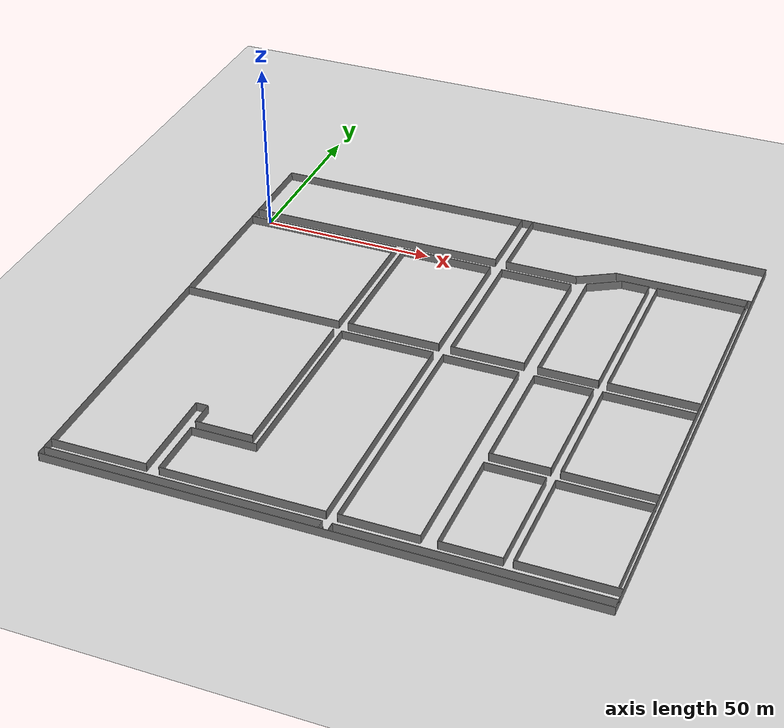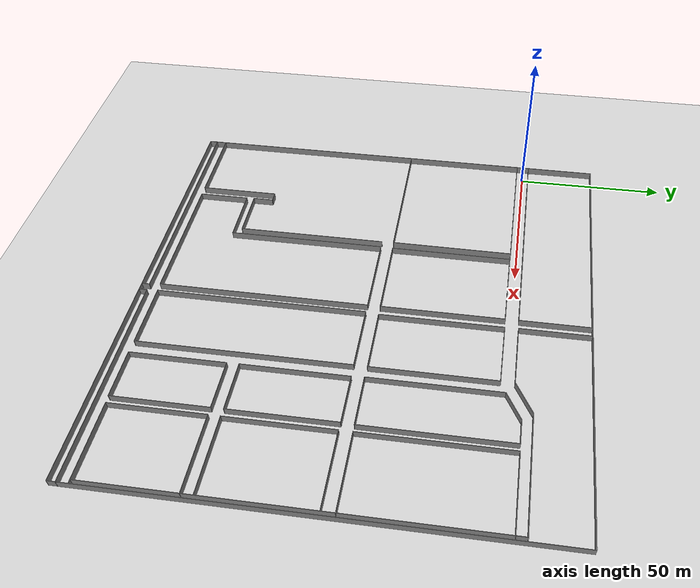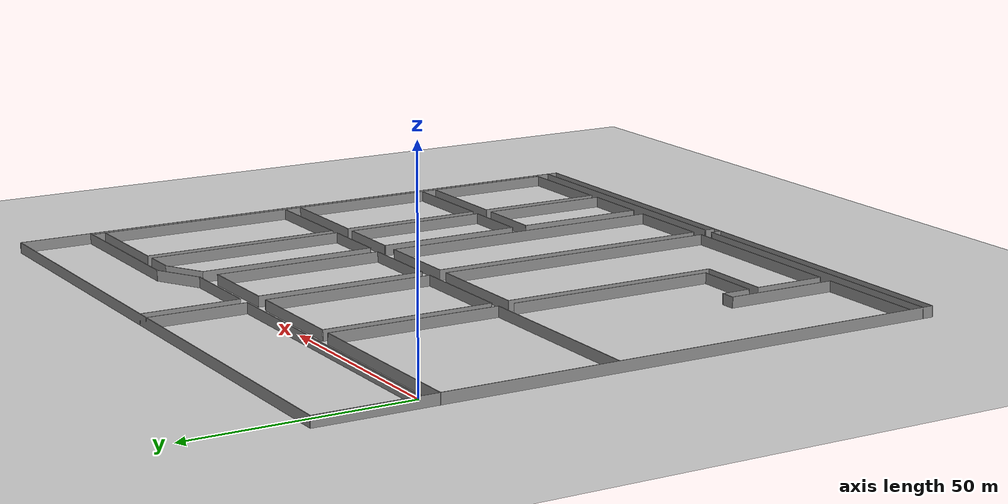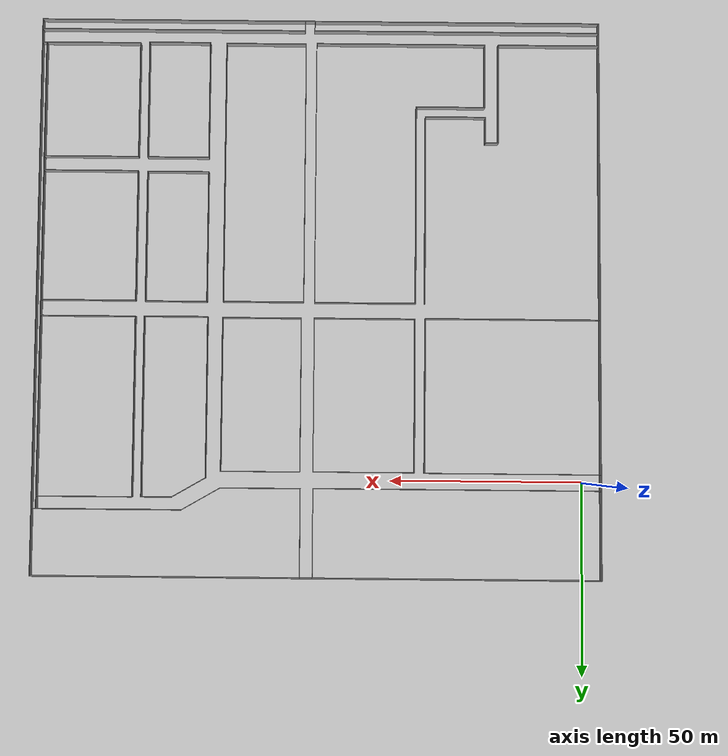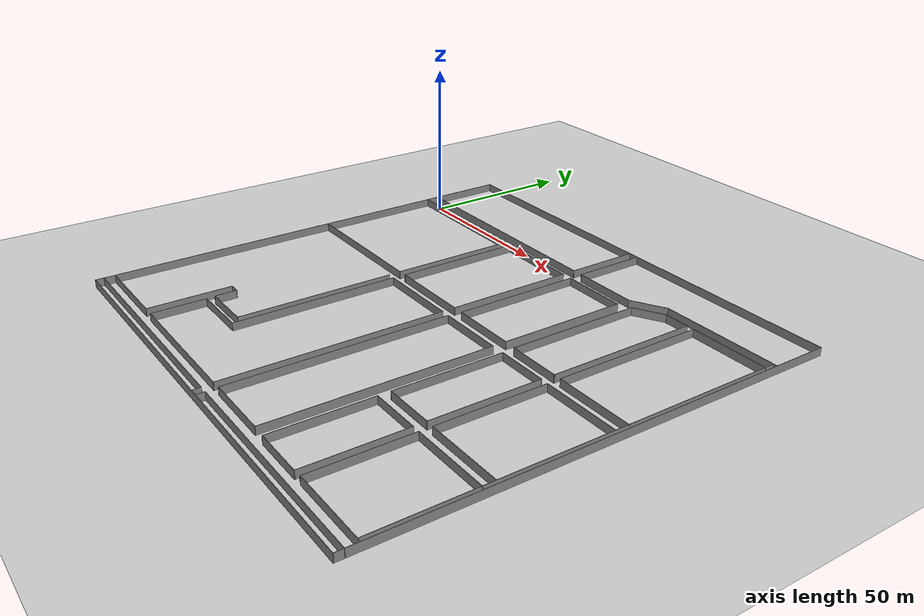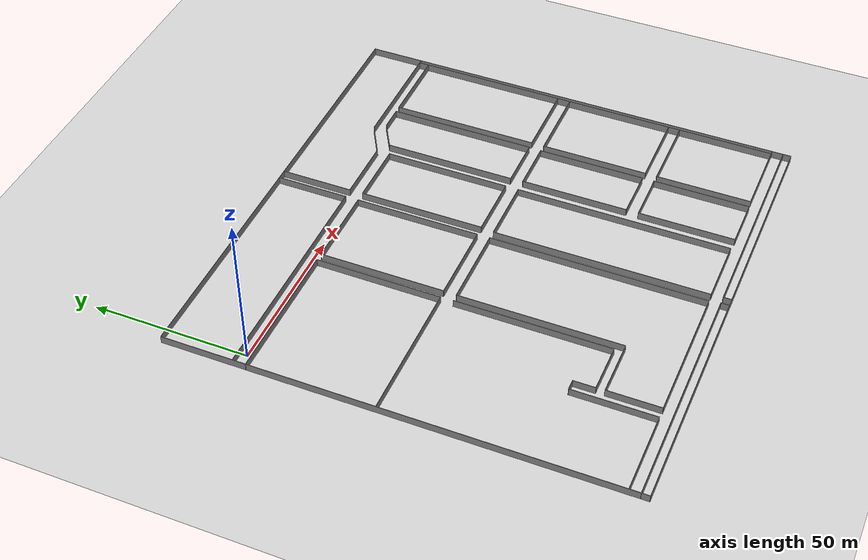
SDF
<sdf version="1.7">
 <world name="default">
  <light name="sun" type="directional">
   <pose>0 0 10 0 -0 0</pose>
   <diffuse>0.8 0.8 0.8 1</diffuse>
   <specular>0.2 0.2 0.2 1</specular>
   <attenuation>
    <range>1000</range>
    <constant>0.9</constant>
    <linear>0.01</linear>
    <quadratic>0.001</quadratic>
   </attenuation>
   <direction>-0.5 0.1 -0.9</direction>
   <spot><inner_angle>0</inner_angle><outer_angle>0</outer_angle><falloff>0</falloff></spot>
  </light>
  <model name="ground_plane">
   <static>1</static>
   <link name="link">
    <collision name="collision">
     <geometry><plane><normal>0 0 1</normal><size>100 100</size></plane></geometry>
     <surface><friction><ode><mu>100</mu><mu2>50</mu2></ode></friction></surface>
    </collision>
    <visual name="visual">
     <cast_shadows>0</cast_shadows>
     <geometry><plane><normal>0 0 1</normal><size>100 100</size></plane></geometry>
     <material>
      <script><uri>file://media/materials/scripts/gazebo.material</uri><name>Gazebo/Grey</name></script>
     </material>
    </visual>
   </link>
  </model>
  <gravity>0 0 -9.8</gravity>
  <magnetic_field>6e-06 2.3e-05 -4.2e-05</magnetic_field>
  <atmosphere type="adiabatic"/>
  <physics type="ode">
   <max_step_size>0.001</max_step_size>
   <real_time_factor>1</real_time_factor>
   <real_time_update_rate>1000</real_time_update_rate>
  </physics>
  <scene><ambient>0.4 0.4 0.4 1</ambient><background>0.7 0.7 0.7 1</background><shadows>1</shadows></scene>
  <audio><device>default</device></audio>
  <spherical_coordinates>
   <surface_model>EARTH_WGS84</surface_model>
   <latitude_deg>0</latitude_deg>
   <longitude_deg>0</longitude_deg>
   <elevation>0</elevation>
   <heading_deg>0</heading_deg>
  </spherical_coordinates>
  <model name="factory_layout">
   <pose>69.0675 -48.1244 0 0 -0 0</pose>
   <link name="Wall_10">
    <collision name="Wall_10_Collision">
     <geometry><box><size>38.945 0.15 2.5</size></box></geometry>
     <pose>0 0 1.25 0 -0 0</pose>
    </collision>
    <visual name="Wall_10_Visual">
     <pose>0 0 1.25 0 -0 0</pose>
     <geometry><box><size>38.945 0.15 2.5</size></box></geometry>
     <material>
      <script><uri>file://media/materials/scripts/gazebo.material</uri><name>Gazebo/Grey</name></script>
      <ambient>1 1 1 1</ambient>
     </material>
     <meta><layer>0</layer></meta>
    </visual>
    <pose>54.4367 56.0755 0 0 -0 0</pose>
   </link>
   <link name="Wall_13">
    <collision name="Wall_13_Collision">
     <geometry><box><size>123.179 0.15 2.5</size></box></geometry>
     <pose>0 0 1.25 0 -0 0</pose>
    </collision>
    <visual name="Wall_13_Visual">
     <pose>0 0 1.25 0 -0 0</pose>
     <geometry><box><size>123.179 0.15 2.5</size></box></geometry>
     <material>
      <script><uri>file://media/materials/scripts/gazebo.material</uri><name>Gazebo/Grey</name></script>
      <ambient>1 1 1 1</ambient>
     </material>
     <meta><layer>0</layer></meta>
    </visual>
    <pose>72.6622 -5.485 0 0 -0 -1.5708</pose>
   </link>
   <link name="Wall_15">
    <collision name="Wall_15_Collision">
     <geometry><box><size>25 0.15 2.5</size></box></geometry>
     <pose>0 0 1.25 0 -0 0</pose>
    </collision>
    <visual name="Wall_15_Visual">
     <pose>0 0 1.25 0 -0 0</pose>
     <geometry><box><size>25 0.15 2.5</size></box></geometry>
     <material>
      <script><uri>file://media/materials/scripts/gazebo.material</uri><name>Gazebo/Grey</name></script>
      <ambient>1 1 1 1</ambient>
     </material>
     <meta><layer>0</layer></meta>
    </visual>
    <pose>60.2462 52.8425 0 0 -0 3.14159</pose>
   </link>
   <link name="Wall_17">
    <collision name="Wall_17_Collision">
     <geometry><box><size>47.2349 0.15 2.5</size></box></geometry>
     <pose>0 0 1.25 0 -0 0</pose>
    </collision>
    <visual name="Wall_17_Visual">
     <pose>0 0 1.25 0 -0 0</pose>
     <geometry><box><size>47.2349 0.15 2.5</size></box></geometry>
     <material>
      <script><uri>file://media/materials/scripts/gazebo.material</uri><name>Gazebo/Grey</name></script>
      <ambient>1 1 1 1</ambient>
     </material>
     <meta><layer>0</layer></meta>
    </visual>
    <pose>47.8212 29.3 0 0 -0 -1.5708</pose>
   </link>
   <link name="Wall_2">
    <collision name="Wall_2_Collision">
     <geometry><box><size>74.8 0.15 2.5</size></box></geometry>
     <pose>0 0 1.25 0 -0 0</pose>
    </collision>
    <visual name="Wall_2_Visual">
     <pose>0 0 1.25 0 -0 0</pose>
     <geometry><box><size>74.8 0.15 2.5</size></box></geometry>
     <material>
      <script><uri>file://media/materials/scripts/gazebo.material</uri><name>Gazebo/Grey</name></script>
      <ambient>1 1 1 1</ambient>
     </material>
     <meta><layer>0</layer></meta>
    </visual>
    <pose>-36.3818 50.2625 0 0 -0 0</pose>
   </link>
   <link name="Wall_20">
    <collision name="Wall_20_Collision">
     <geometry><box><size>25 0.15 2.5</size></box></geometry>
     <pose>0 0 1.25 0 -0 0</pose>
    </collision>
    <visual name="Wall_20_Visual">
     <pose>0 0 1.25 0 -0 0</pose>
     <geometry><box><size>25 0.15 2.5</size></box></geometry>
     <material>
      <script><uri>file://media/materials/scripts/gazebo.material</uri><name>Gazebo/Grey</name></script>
      <ambient>1 1 1 1</ambient>
     </material>
     <meta><layer>0</layer></meta>
    </visual>
    <pose>60.2462 5.7575 0 0 -0 0</pose>
   </link>
   <link name="Wall_22">
    <collision name="Wall_22_Collision">
     <geometry><box><size>25 0.15 2.5</size></box></geometry>
     <pose>0 0 1.25 0 -0 0</pose>
    </collision>
    <visual name="Wall_22_Visual">
     <pose>0 0 1.25 0 -0 0</pose>
     <geometry><box><size>25 0.15 2.5</size></box></geometry>
     <material>
      <script><uri>file://media/materials/scripts/gazebo.material</uri><name>Gazebo/Grey</name></script>
      <ambient>1 1 1 1</ambient>
     </material>
     <meta><layer>0</layer></meta>
    </visual>
    <pose>60.2359 1.59277 0 0 -0 3.14159</pose>
   </link>
   <link name="Wall_24">
    <collision name="Wall_24_Collision">
     <geometry><box><size>34.5 0.15 2.5</size></box></geometry>
     <pose>0 0 1.25 0 -0 0</pose>
    </collision>
    <visual name="Wall_24_Visual">
     <pose>0 0 1.25 0 -0 0</pose>
     <geometry><box><size>34.5 0.15 2.5</size></box></geometry>
     <material>
      <script><uri>file://media/materials/scripts/gazebo.material</uri><name>Gazebo/Grey</name></script>
      <ambient>1 1 1 1</ambient>
     </material>
     <meta><layer>0</layer></meta>
    </visual>
    <pose>47.8109 -15.5822 0 0 -0 -1.5708</pose>
   </link>
   <link name="Wall_25">
    <collision name="Wall_25_Collision">
     <geometry><box><size>25 0.15 2.5</size></box></geometry>
     <pose>0 0 1.25 0 -0 0</pose>
    </collision>
    <visual name="Wall_25_Visual">
     <pose>0 0 1.25 0 -0 0</pose>
     <geometry><box><size>25 0.15 2.5</size></box></geometry>
     <material>
      <script><uri>file://media/materials/scripts/gazebo.material</uri><name>Gazebo/Grey</name></script>
      <ambient>1 1 1 1</ambient>
     </material>
     <meta><layer>0</layer></meta>
    </visual>
    <pose>60.2359 -32.7572 0 0 -0 0</pose>
   </link>
   <link name="Wall_27">
    <collision name="Wall_27_Collision">
     <geometry><box><size>25.067 0.15 2.5</size></box></geometry>
     <pose>0 0 1.25 0 -0 0</pose>
    </collision>
    <visual name="Wall_27_Visual">
     <pose>0 0 1.25 0 -0 0</pose>
     <geometry><box><size>25.067 0.15 2.5</size></box></geometry>
     <material>
      <script><uri>file://media/materials/scripts/gazebo.material</uri><name>Gazebo/Grey</name></script>
      <ambient>1 1 1 1</ambient>
     </material>
     <meta><layer>0</layer></meta>
    </visual>
    <pose>60.2237 -36.5304 0 0 -0 -3.14159</pose>
   </link>
   <link name="Wall_28">
    <collision name="Wall_28_Collision">
     <geometry><box><size>30.75 0.15 2.5</size></box></geometry>
     <pose>0 0 1.25 0 -0 0</pose>
    </collision>
    <visual name="Wall_28_Visual">
     <pose>0 0 1.25 0 -0 0</pose>
     <geometry><box><size>30.75 0.15 2.5</size></box></geometry>
     <material>
      <script><uri>file://media/materials/scripts/gazebo.material</uri><name>Gazebo/Grey</name></script>
      <ambient>1 1 1 1</ambient>
     </material>
     <meta><layer>0</layer></meta>
    </visual>
    <pose>47.7652 -51.8305 0 0 -0 -1.5708</pose>
   </link>
   <link name="Wall_29">
    <collision name="Wall_29_Collision">
     <geometry><box><size>26.067 0.15 2.5</size></box></geometry>
     <pose>0 0 1.25 0 -0 0</pose>
    </collision>
    <visual name="Wall_29_Visual">
     <pose>0 0 1.25 0 -0 0</pose>
     <geometry><box><size>26.067 0.15 2.5</size></box></geometry>
     <material>
      <script><uri>file://media/materials/scripts/gazebo.material</uri><name>Gazebo/Grey</name></script>
      <ambient>1 1 1 1</ambient>
     </material>
     <meta><layer>0</layer></meta>
    </visual>
    <pose>60.7237 -67.1304 0 0 -0 6e-06</pose>
   </link>
   <link name="Wall_3">
    <collision name="Wall_3_Collision">
     <geometry><box><size>23.252 0.15 2.5</size></box></geometry>
     <pose>0 0 0.125 0 -0 0</pose>
    </collision>
    <visual name="Wall_3_Visual">
     <pose>0 0 0.125 0 -0 0</pose>
     <geometry><box><size>23.252 0.15 2.5</size></box></geometry>
     <material>
      <script><uri>file://media/materials/scripts/gazebo.material</uri><name>Gazebo/Grey</name></script>
      <ambient>1 1 1 1</ambient>
     </material>
     <meta><layer>0</layer></meta>
    </visual>
    <pose>0.943225 61.8135 1.12 0 -0 1.5708</pose>
   </link>
   <link name="Wall_31">
    <collision name="Wall_31_Collision">
     <geometry><box><size>16.25 0.15 2.5</size></box></geometry>
     <pose>0 0 1.25 0 -0 0</pose>
    </collision>
    <visual name="Wall_31_Visual">
     <pose>0 0 1.25 0 -0 0</pose>
     <geometry><box><size>16.25 0.15 2.5</size></box></geometry>
     <material>
      <script><uri>file://media/materials/scripts/gazebo.material</uri><name>Gazebo/Grey</name></script>
      <ambient>1 1 1 1</ambient>
     </material>
     <meta><layer>0</layer></meta>
    </visual>
    <pose>37.2893 -36.4841 0 0 -0 0</pose>
   </link>
   <link name="Wall_32">
    <collision name="Wall_32_Collision">
     <geometry><box><size>31 0.15 2.5</size></box></geometry>
     <pose>0 0 1.25 0 -0 0</pose>
    </collision>
    <visual name="Wall_32_Visual">
     <pose>0 0 1.25 0 -0 0</pose>
     <geometry><box><size>31 0.15 2.5</size></box></geometry>
     <material>
      <script><uri>file://media/materials/scripts/gazebo.material</uri><name>Gazebo/Grey</name></script>
      <ambient>1 1 1 1</ambient>
     </material>
     <meta><layer>0</layer></meta>
    </visual>
    <pose>45.3393 -51.9091 0 0 -0 -1.5708</pose>
   </link>
   <link name="Wall_33">
    <collision name="Wall_33_Collision">
     <geometry><box><size>16.25 0.15 2.5</size></box></geometry>
     <pose>0 0 1.25 0 -0 0</pose>
    </collision>
    <visual name="Wall_33_Visual">
     <pose>0 0 1.25 0 -0 0</pose>
     <geometry><box><size>16.25 0.15 2.5</size></box></geometry>
     <material>
      <script><uri>file://media/materials/scripts/gazebo.material</uri><name>Gazebo/Grey</name></script>
      <ambient>1 1 1 1</ambient>
     </material>
     <meta><layer>0</layer></meta>
    </visual>
    <pose>37.2893 -67.3341 0 0 -0 3.14159</pose>
   </link>
   <link name="Wall_34">
    <collision name="Wall_34_Collision">
     <geometry><box><size>31 0.15 2.5</size></box></geometry>
     <pose>0 0 1.25 0 -0 0</pose>
    </collision>
    <visual name="Wall_34_Visual">
     <pose>0 0 1.25 0 -0 0</pose>
     <geometry><box><size>31 0.15 2.5</size></box></geometry>
     <material>
      <script><uri>file://media/materials/scripts/gazebo.material</uri><name>Gazebo/Grey</name></script>
      <ambient>1 1 1 1</ambient>
     </material>
     <meta><layer>0</layer></meta>
    </visual>
    <pose>29.2393 -51.9091 0 0 -0 1.5708</pose>
   </link>
   <link name="Wall_36">
    <collision name="Wall_36_Collision">
     <geometry><box><size>16.25 0.15 2.5</size></box></geometry>
     <pose>0 0 1.25 0 -0 0</pose>
    </collision>
    <visual name="Wall_36_Visual">
     <pose>0 0 1.25 0 -0 0</pose>
     <geometry><box><size>16.25 0.15 2.5</size></box></geometry>
     <material>
      <script><uri>file://media/materials/scripts/gazebo.material</uri><name>Gazebo/Grey</name></script>
      <ambient>1 1 1 1</ambient>
     </material>
     <meta><layer>0</layer></meta>
    </visual>
    <pose>37.237 1.72266 0 0 -0 1.9e-05</pose>
   </link>
   <link name="Wall_37">
    <collision name="Wall_37_Collision">
     <geometry><box><size>34.5 0.15 2.5</size></box></geometry>
     <pose>0 0 1.25 0 -0 0</pose>
    </collision>
    <visual name="Wall_37_Visual">
     <pose>0 0 1.25 0 -0 0</pose>
     <geometry><box><size>34.5 0.15 2.5</size></box></geometry>
     <material>
      <script><uri>file://media/materials/scripts/gazebo.material</uri><name>Gazebo/Grey</name></script>
      <ambient>1 1 1 1</ambient>
     </material>
     <meta><layer>0</layer></meta>
    </visual>
    <pose>45.2868 -15.4522 0 0 -0 -1.5708</pose>
   </link>
   <link name="Wall_38">
    <collision name="Wall_38_Collision">
     <geometry><box><size>16.2495 0.15 2.5</size></box></geometry>
     <pose>0 0 1.25 0 -0 0</pose>
    </collision>
    <visual name="Wall_38_Visual">
     <pose>0 0 1.25 0 -0 0</pose>
     <geometry><box><size>16.2495 0.15 2.5</size></box></geometry>
     <material>
      <script><uri>file://media/materials/scripts/gazebo.material</uri><name>Gazebo/Grey</name></script>
      <ambient>1 1 1 1</ambient>
     </material>
     <meta><layer>0</layer></meta>
    </visual>
    <pose>37.237 -32.6273 0 0 -0 -3.14157</pose>
   </link>
   <link name="Wall_39">
    <collision name="Wall_39_Collision">
     <geometry><box><size>34.5009 0.15 2.5</size></box></geometry>
     <pose>0 0 1.25 0 -0 0</pose>
    </collision>
    <visual name="Wall_39_Visual">
     <pose>0 0 1.25 0 -0 0</pose>
     <geometry><box><size>34.5009 0.15 2.5</size></box></geometry>
     <material>
      <script><uri>file://media/materials/scripts/gazebo.material</uri><name>Gazebo/Grey</name></script>
      <ambient>1 1 1 1</ambient>
     </material>
     <meta><layer>0</layer></meta>
    </visual>
    <pose>29.1872 -15.4525 0 0 -0 1.5708</pose>
   </link>
   <link name="Wall_41">
    <collision name="Wall_41_Collision">
     <geometry><box><size>10.25 0.15 2.5</size></box></geometry>
     <pose>0 0 1.25 0 -0 0</pose>
    </collision>
    <visual name="Wall_41_Visual">
     <pose>0 0 1.25 0 -0 0</pose>
     <geometry><box><size>10.25 0.15 2.5</size></box></geometry>
     <material>
      <script><uri>file://media/materials/scripts/gazebo.material</uri><name>Gazebo/Grey</name></script>
      <ambient>1 1 1 1</ambient>
     </material>
     <meta><layer>0</layer></meta>
    </visual>
    <pose>33.2641 50.275 0 0 -0 0.523599</pose>
   </link>
   <link name="Wall_42">
    <collision name="Wall_42_Collision">
     <geometry><box><size>8 0.15 2.5</size></box></geometry>
     <pose>0 0 1.25 0 -0 0</pose>
    </collision>
    <visual name="Wall_42_Visual">
     <pose>0 0 1.25 0 -0 0</pose>
     <geometry><box><size>8 0.15 2.5</size></box></geometry>
     <material>
      <script><uri>file://media/materials/scripts/gazebo.material</uri><name>Gazebo/Grey</name></script>
      <ambient>1 1 1 1</ambient>
     </material>
     <meta><layer>0</layer></meta>
    </visual>
    <pose>41.5626 52.8 0 0 -0 0</pose>
   </link>
   <link name="Wall_44">
    <collision name="Wall_44_Collision">
     <geometry><box><size>47.25 0.15 2.5</size></box></geometry>
     <pose>0 0 1.25 0 -0 0</pose>
    </collision>
    <visual name="Wall_44_Visual">
     <pose>0 0 1.25 0 -0 0</pose>
     <geometry><box><size>47.25 0.15 2.5</size></box></geometry>
     <material>
      <script><uri>file://media/materials/scripts/gazebo.material</uri><name>Gazebo/Grey</name></script>
      <ambient>1 1 1 1</ambient>
     </material>
     <meta><layer>0</layer></meta>
    </visual>
    <pose>45.4876 29.25 0 0 -0 -1.5708</pose>
   </link>
   <link name="Wall_45">
    <collision name="Wall_45_Collision">
     <geometry><box><size>16.7473 0.15 2.5</size></box></geometry>
     <pose>0 0 1.25 0 -0 0</pose>
    </collision>
    <visual name="Wall_45_Visual">
     <pose>0 0 1.25 0 -0 0</pose>
     <geometry><box><size>16.7473 0.15 2.5</size></box></geometry>
     <material>
      <script><uri>file://media/materials/scripts/gazebo.material</uri><name>Gazebo/Grey</name></script>
      <ambient>1 1 1 1</ambient>
     </material>
     <meta><layer>0</layer></meta>
    </visual>
    <pose>37.1889 5.69974 0 0 -0 -3.14156</pose>
   </link>
   <link name="Wall_46">
    <collision name="Wall_46_Collision">
     <geometry><box><size>42.2 0.15 2.5</size></box></geometry>
     <pose>0 0 1.25 0 -0 0</pose>
    </collision>
    <visual name="Wall_46_Visual">
     <pose>0 0 1.25 0 -0 0</pose>
     <geometry><box><size>42.2 0.15 2.5</size></box></geometry>
     <material>
      <script><uri>file://media/materials/scripts/gazebo.material</uri><name>Gazebo/Grey</name></script>
      <ambient>1 1 1 1</ambient>
     </material>
     <meta><layer>0</layer></meta>
    </visual>
    <pose>28.8902 26.7245 0 0 -0 1.5708</pose>
   </link>
   <link name="Wall_48">
    <collision name="Wall_48_Collision">
     <geometry><box><size>2.75 0.15 2.5</size></box></geometry>
     <pose>0 0 1.25 0 -0 0</pose>
    </collision>
    <visual name="Wall_48_Visual">
     <pose>0 0 1.25 0 -0 0</pose>
     <geometry><box><size>2.75 0.15 2.5</size></box></geometry>
     <material>
      <script><uri>file://media/materials/scripts/gazebo.material</uri><name>Gazebo/Grey</name></script>
      <ambient>1 1 1 1</ambient>
     </material>
     <meta><layer>0</layer></meta>
    </visual>
    <pose>4.06731 -72.0644 0 0 -0 1.57086</pose>
   </link>
   <link name="Wall_49">
    <collision name="Wall_49_Collision">
     <geometry><box><size>69.917 0.15 2.5</size></box></geometry>
     <pose>0 0 1.25 0 -0 0</pose>
    </collision>
    <visual name="Wall_49_Visual">
     <pose>0 0 1.25 0 -0 0</pose>
     <geometry><box><size>69.917 0.15 2.5</size></box></geometry>
     <material>
      <script><uri>file://media/materials/scripts/gazebo.material</uri><name>Gazebo/Grey</name></script>
      <ambient>1 1 1 1</ambient>
     </material>
     <meta><layer>0</layer></meta>
    </visual>
    <pose>38.9507 -70.7645 0 0 -0 0</pose>
   </link>
   <link name="Wall_51">
    <collision name="Wall_51_Collision">
     <geometry><box><size>75.5 0.15 2.5</size></box></geometry>
     <pose>0 0 1.25 0 -0 0</pose>
    </collision>
    <visual name="Wall_51_Visual">
     <pose>0 0 1.25 0 -0 0</pose>
     <geometry><box><size>75.5 0.15 2.5</size></box></geometry>
     <material>
      <script><uri>file://media/materials/scripts/gazebo.material</uri><name>Gazebo/Grey</name></script>
      <ambient>1 1 1 1</ambient>
     </material>
     <meta><layer>0</layer></meta>
    </visual>
    <pose>-36.131 -70.7926 0 0 -0 0</pose>
   </link>
   <link name="Wall_52">
    <collision name="Wall_52_Collision">
     <geometry><box><size>2.7 0.15 2.5</size></box></geometry>
     <pose>0 0 1.25 0 -0 0</pose>
    </collision>
    <visual name="Wall_52_Visual">
     <pose>0 0 1.25 0 -0 0</pose>
     <geometry><box><size>2.7 0.15 2.5</size></box></geometry>
     <material>
      <script><uri>file://media/materials/scripts/gazebo.material</uri><name>Gazebo/Grey</name></script>
      <ambient>1 1 1 1</ambient>
     </material>
     <meta><layer>0</layer></meta>
    </visual>
    <pose>1.54399 -72.0676 0 0 -0 -1.5708</pose>
   </link>
   <link name="Wall_56">
    <collision name="Wall_56_Collision">
     <geometry><box><size>21.25 0.15 2.5</size></box></geometry>
     <pose>0 0 1.25 0 -0 0</pose>
    </collision>
    <visual name="Wall_56_Visual">
     <pose>0 0 1.25 0 -0 0</pose>
     <geometry><box><size>21.25 0.15 2.5</size></box></geometry>
     <material>
      <script><uri>file://media/materials/scripts/gazebo.material</uri><name>Gazebo/Grey</name></script>
      <ambient>1 1 1 1</ambient>
     </material>
     <meta><layer>0</layer></meta>
    </visual>
    <pose>14.364 1.66856 0 0 -0 0</pose>
   </link>
   <link name="Wall_57">
    <collision name="Wall_57_Collision">
     <geometry><box><size>69 0.15 2.5</size></box></geometry>
     <pose>0 0 1.25 0 -0 0</pose>
    </collision>
    <visual name="Wall_57_Visual">
     <pose>0 0 1.25 0 -0 0</pose>
     <geometry><box><size>69 0.15 2.5</size></box></geometry>
     <material>
      <script><uri>file://media/materials/scripts/gazebo.material</uri><name>Gazebo/Grey</name></script>
      <ambient>1 1 1 1</ambient>
     </material>
     <meta><layer>0</layer></meta>
    </visual>
    <pose>24.914 -32.7564 0 0 -0 -1.5708</pose>
   </link>
   <link name="Wall_58">
    <collision name="Wall_58_Collision">
     <geometry><box><size>21.25 0.15 2.5</size></box></geometry>
     <pose>0 0 1.25 0 -0 0</pose>
    </collision>
    <visual name="Wall_58_Visual">
     <pose>0 0 1.25 0 -0 0</pose>
     <geometry><box><size>21.25 0.15 2.5</size></box></geometry>
     <material>
      <script><uri>file://media/materials/scripts/gazebo.material</uri><name>Gazebo/Grey</name></script>
      <ambient>1 1 1 1</ambient>
     </material>
     <meta><layer>0</layer></meta>
    </visual>
    <pose>14.364 -67.1814 0 0 -0 3.14159</pose>
   </link>
   <link name="Wall_59">
    <collision name="Wall_59_Collision">
     <geometry><box><size>69 0.15 2.5</size></box></geometry>
     <pose>0 0 1.25 0 -0 0</pose>
    </collision>
    <visual name="Wall_59_Visual">
     <pose>0 0 1.25 0 -0 0</pose>
     <geometry><box><size>69 0.15 2.5</size></box></geometry>
     <material>
      <script><uri>file://media/materials/scripts/gazebo.material</uri><name>Gazebo/Grey</name></script>
      <ambient>1 1 1 1</ambient>
     </material>
     <meta><layer>0</layer></meta>
    </visual>
    <pose>3.81399 -32.7564 0 0 -0 1.5708</pose>
   </link>
   <link name="Wall_6">
    <collision name="Wall_6_Collision">
     <geometry><box><size>23.199 0.15 2.5</size></box></geometry>
     <pose>0 0 1.25 0 -0 0</pose>
    </collision>
    <visual name="Wall_6_Visual">
     <pose>0 0 1.25 0 -0 0</pose>
     <geometry><box><size>23.199 0.15 2.5</size></box></geometry>
     <material>
      <script><uri>file://media/materials/scripts/gazebo.material</uri><name>Gazebo/Grey</name></script>
      <ambient>1 1 1 1</ambient>
     </material>
     <meta><layer>0</layer></meta>
    </visual>
    <pose>4.23222 61.84 0 0 -0 -1.5708</pose>
   </link>
   <link name="Wall_61">
    <collision name="Wall_61_Collision">
     <geometry><box><size>20.75 0.15 2.5</size></box></geometry>
     <pose>0 0 1.25 0 -0 0</pose>
    </collision>
    <visual name="Wall_61_Visual">
     <pose>0 0 1.25 0 -0 0</pose>
     <geometry><box><size>20.75 0.15 2.5</size></box></geometry>
     <material>
      <script><uri>file://media/materials/scripts/gazebo.material</uri><name>Gazebo/Grey</name></script>
      <ambient>1 1 1 1</ambient>
     </material>
     <meta><layer>0</layer></meta>
    </visual>
    <pose>14.6729 45.9968 0 0 -0 0</pose>
   </link>
   <link name="Wall_62">
    <collision name="Wall_62_Collision">
     <geometry><box><size>40.25 0.15 2.5</size></box></geometry>
     <pose>0 0 1.25 0 -0 0</pose>
    </collision>
    <visual name="Wall_62_Visual">
     <pose>0 0 1.25 0 -0 0</pose>
     <geometry><box><size>40.25 0.15 2.5</size></box></geometry>
     <material>
      <script><uri>file://media/materials/scripts/gazebo.material</uri><name>Gazebo/Grey</name></script>
      <ambient>1 1 1 1</ambient>
     </material>
     <meta><layer>0</layer></meta>
    </visual>
    <pose>24.9729 25.9468 0 0 -0 -1.5708</pose>
   </link>
   <link name="Wall_63">
    <collision name="Wall_63_Collision">
     <geometry><box><size>20.75 0.15 2.5</size></box></geometry>
     <pose>0 0 1.25 0 -0 0</pose>
    </collision>
    <visual name="Wall_63_Visual">
     <pose>0 0 1.25 0 -0 0</pose>
     <geometry><box><size>20.75 0.15 2.5</size></box></geometry>
     <material>
      <script><uri>file://media/materials/scripts/gazebo.material</uri><name>Gazebo/Grey</name></script>
      <ambient>1 1 1 1</ambient>
     </material>
     <meta><layer>0</layer></meta>
    </visual>
    <pose>14.6729 5.89676 0 0 -0 3.14159</pose>
   </link>
   <link name="Wall_64">
    <collision name="Wall_64_Collision">
     <geometry><box><size>40.25 0.15 2.5</size></box></geometry>
     <pose>0 0 1.25 0 -0 0</pose>
    </collision>
    <visual name="Wall_64_Visual">
     <pose>0 0 1.25 0 -0 0</pose>
     <geometry><box><size>40.25 0.15 2.5</size></box></geometry>
     <material>
      <script><uri>file://media/materials/scripts/gazebo.material</uri><name>Gazebo/Grey</name></script>
      <ambient>1 1 1 1</ambient>
     </material>
     <meta><layer>0</layer></meta>
    </visual>
    <pose>4.37292 25.9468 0 0 -0 1.5708</pose>
   </link>
   <link name="Wall_66">
    <collision name="Wall_66_Collision">
     <geometry><box><size>26.5 0.15 2.5</size></box></geometry>
     <pose>0 0 1.25 0 -0 0</pose>
    </collision>
    <visual name="Wall_66_Visual">
     <pose>0 0 1.25 0 -0 0</pose>
     <geometry><box><size>26.5 0.15 2.5</size></box></geometry>
     <material>
      <script><uri>file://media/materials/scripts/gazebo.material</uri><name>Gazebo/Grey</name></script>
      <ambient>1 1 1 1</ambient>
     </material>
     <meta><layer>0</layer></meta>
    </visual>
    <pose>-12.1898 45.9495 0 0 -0 0</pose>
   </link>
   <link name="Wall_67">
    <collision name="Wall_67_Collision">
     <geometry><box><size>40.25 0.15 2.5</size></box></geometry>
     <pose>0 0 1.25 0 -0 0</pose>
    </collision>
    <visual name="Wall_67_Visual">
     <pose>0 0 1.25 0 -0 0</pose>
     <geometry><box><size>40.25 0.15 2.5</size></box></geometry>
     <material>
      <script><uri>file://media/materials/scripts/gazebo.material</uri><name>Gazebo/Grey</name></script>
      <ambient>1 1 1 1</ambient>
     </material>
     <meta><layer>0</layer></meta>
    </visual>
    <pose>0.985225 25.8995 0 0 -0 -1.5708</pose>
   </link>
   <link name="Wall_68">
    <collision name="Wall_68_Collision">
     <geometry><box><size>26.4997 0.15 2.5</size></box></geometry>
     <pose>0 0 1.25 0 -0 0</pose>
    </collision>
    <visual name="Wall_68_Visual">
     <pose>0 0 1.25 0 -0 0</pose>
     <geometry><box><size>26.4997 0.15 2.5</size></box></geometry>
     <material>
      <script><uri>file://media/materials/scripts/gazebo.material</uri><name>Gazebo/Grey</name></script>
      <ambient>1 1 1 1</ambient>
     </material>
     <meta><layer>0</layer></meta>
    </visual>
    <pose>-12.1896 5.84937 0 0 -0 -3.14158</pose>
   </link>
   <link name="Wall_69">
    <collision name="Wall_69_Collision">
     <geometry><box><size>40.25 0.15 2.5</size></box></geometry>
     <pose>0 0 1.25 0 -0 0</pose>
    </collision>
    <visual name="Wall_69_Visual">
     <pose>0 0 1.25 0 -0 0</pose>
     <geometry><box><size>40.25 0.15 2.5</size></box></geometry>
     <material>
      <script><uri>file://media/materials/scripts/gazebo.material</uri><name>Gazebo/Grey</name></script>
      <ambient>1 1 1 1</ambient>
     </material>
     <meta><layer>0</layer></meta>
    </visual>
    <pose>-25.3645 25.8992 0 0 -0 1.5708</pose>
   </link>
   <link name="Wall_7">
    <collision name="Wall_7_Collision">
     <geometry><box><size>20.9512 0.15 2.5</size></box></geometry>
     <pose>0 0 1.25 0 -0 0</pose>
    </collision>
    <visual name="Wall_7_Visual">
     <pose>0 0 1.25 0 -0 0</pose>
     <geometry><box><size>20.9512 0.15 2.5</size></box></geometry>
     <material>
      <script><uri>file://media/materials/scripts/gazebo.material</uri><name>Gazebo/Grey</name></script>
      <ambient>1 1 1 1</ambient>
     </material>
     <meta><layer>0</layer></meta>
    </visual>
    <pose>14.6332 50.3155 0 0 -0 0</pose>
   </link>
   <link name="Wall_73">
    <collision name="Wall_73_Collision">
     <geometry><box><size>26.648 0.15 2.5</size></box></geometry>
     <pose>0 0 1.25 0 -0 0</pose>
    </collision>
    <visual name="Wall_73_Visual">
     <pose>0 0 1.25 0 -0 0</pose>
     <geometry><box><size>26.648 0.15 2.5</size></box></geometry>
     <material>
      <script><uri>file://media/materials/scripts/gazebo.material</uri><name>Gazebo/Grey</name></script>
      <ambient>1 1 1 1</ambient>
     </material>
     <meta><layer>0</layer></meta>
    </visual>
    <pose>-12.2558 1.7505 0 0 -0 0</pose>
   </link>
   <link name="Wall_74">
    <collision name="Wall_74_Collision">
     <geometry><box><size>69.25 0.15 2.5</size></box></geometry>
     <pose>0 0 1.25 0 -0 0</pose>
    </collision>
    <visual name="Wall_74_Visual">
     <pose>0 0 1.25 0 -0 0</pose>
     <geometry><box><size>69.25 0.15 2.5</size></box></geometry>
     <material>
      <script><uri>file://media/materials/scripts/gazebo.material</uri><name>Gazebo/Grey</name></script>
      <ambient>1 1 1 1</ambient>
     </material>
     <meta><layer>0</layer></meta>
    </visual>
    <pose>0.99313 -32.7994 0 0 -0 -1.5708</pose>
   </link>
   <link name="Wall_75">
    <collision name="Wall_75_Collision">
     <geometry><box><size>44.75 0.15 2.5</size></box></geometry>
     <pose>0 0 1.25 0 -0 0</pose>
    </collision>
    <visual name="Wall_75_Visual">
     <pose>0 0 1.25 0 -0 0</pose>
     <geometry><box><size>44.75 0.15 2.5</size></box></geometry>
     <material>
      <script><uri>file://media/materials/scripts/gazebo.material</uri><name>Gazebo/Grey</name></script>
      <ambient>1 1 1 1</ambient>
     </material>
     <meta><layer>0</layer></meta>
    </visual>
    <pose>-21.307 -67.3492 0 0 -0 3.14159</pose>
   </link>
   <link name="Wall_76">
    <collision name="Wall_76_Collision">
     <geometry><box><size>17 0.15 2.5</size></box></geometry>
     <pose>0 0 1.25 0 -0 0</pose>
    </collision>
    <visual name="Wall_76_Visual">
     <pose>0 0 1.25 0 -0 0</pose>
     <geometry><box><size>17 0.15 2.5</size></box></geometry>
     <material>
      <script><uri>file://media/materials/scripts/gazebo.material</uri><name>Gazebo/Grey</name></script>
      <ambient>1 1 1 1</ambient>
     </material>
     <meta><layer>0</layer></meta>
    </visual>
    <pose>-43.607 -58.9242 0 0 -0 1.5708</pose>
   </link>
   <link name="Wall_77">
    <collision name="Wall_77_Collision">
     <geometry><box><size>18.25 0.15 2.5</size></box></geometry>
     <pose>0 0 1.25 0 -0 0</pose>
    </collision>
    <visual name="Wall_77_Visual">
     <pose>0 0 1.25 0 -0 0</pose>
     <geometry><box><size>18.25 0.15 2.5</size></box></geometry>
     <material>
      <script><uri>file://media/materials/scripts/gazebo.material</uri><name>Gazebo/Grey</name></script>
      <ambient>1 1 1 1</ambient>
     </material>
     <meta><layer>0</layer></meta>
    </visual>
    <pose>-34.557 -50.4992 0 0 -0 0</pose>
   </link>
   <link name="Wall_78">
    <collision name="Wall_78_Collision">
     <geometry><box><size>52.25 0.15 2.5</size></box></geometry>
     <pose>0 0 1.25 0 -0 0</pose>
    </collision>
    <visual name="Wall_78_Visual">
     <pose>0 0 1.25 0 -0 0</pose>
     <geometry><box><size>52.25 0.15 2.5</size></box></geometry>
     <material>
      <script><uri>file://media/materials/scripts/gazebo.material</uri><name>Gazebo/Grey</name></script>
      <ambient>1 1 1 1</ambient>
     </material>
     <meta><layer>0</layer></meta>
    </visual>
    <pose>-25.507 -24.4492 0 0 -0 1.5708</pose>
   </link>
   <link name="Wall_8">
    <collision name="Wall_8_Collision">
     <geometry><box><size>11.6948 0.15 2.5</size></box></geometry>
     <pose>0 0 1.25 0 -0 0</pose>
    </collision>
    <visual name="Wall_8_Visual">
     <pose>0 0 1.25 0 -0 0</pose>
     <geometry><box><size>11.6948 0.15 2.5</size></box></geometry>
     <material>
      <script><uri>file://media/materials/scripts/gazebo.material</uri><name>Gazebo/Grey</name></script>
      <ambient>1 1 1 1</ambient>
     </material>
     <meta><layer>0</layer></meta>
    </visual>
    <pose>30.0367 53.1955 0 0 -0 0.522369</pose>
   </link>
   <link name="Wall_80">
    <collision name="Wall_80_Collision">
     <geometry><box><size>46 0.15 2.5</size></box></geometry>
     <pose>0 0 1.25 0 -0 0</pose>
    </collision>
    <visual name="Wall_80_Visual">
     <pose>0 0 1.25 0 -0 0</pose>
     <geometry><box><size>46 0.15 2.5</size></box></geometry>
     <material>
      <script><uri>file://media/materials/scripts/gazebo.material</uri><name>Gazebo/Grey</name></script>
      <ambient>1 1 1 1</ambient>
     </material>
     <meta><layer>0</layer></meta>
    </visual>
    <pose>-50.9092 46.0441 0 0 -0 0</pose>
   </link>
   <link name="Wall_81">
    <collision name="Wall_81_Collision">
     <geometry><box><size>40.4903 0.15 2.5</size></box></geometry>
     <pose>0 0 1.25 0 -0 0</pose>
    </collision>
    <visual name="Wall_81_Visual">
     <pose>0 0 1.25 0 -0 0</pose>
     <geometry><box><size>40.4903 0.15 2.5</size></box></geometry>
     <material>
      <script><uri>file://media/materials/scripts/gazebo.material</uri><name>Gazebo/Grey</name></script>
      <ambient>1 1 1 1</ambient>
     </material>
     <meta><layer>0</layer></meta>
    </visual>
    <pose>-28.0474 25.874 0 0 -0 -1.57393</pose>
   </link>
   <link name="Wall_82">
    <collision name="Wall_82_Collision">
     <geometry><box><size>45.75 0.15 2.5</size></box></geometry>
     <pose>0 0 1.25 0 -0 0</pose>
    </collision>
    <visual name="Wall_82_Visual">
     <pose>0 0 1.25 0 -0 0</pose>
     <geometry><box><size>45.75 0.15 2.5</size></box></geometry>
     <material>
      <script><uri>file://media/materials/scripts/gazebo.material</uri><name>Gazebo/Grey</name></script>
      <ambient>1 1 1 1</ambient>
     </material>
     <meta><layer>0</layer></meta>
    </visual>
    <pose>-50.9009 5.70385 0 0 -0 3.14159</pose>
   </link>
   <link name="Wall_85">
    <collision name="Wall_85_Collision">
     <geometry><box><size>49.75 0.15 2.5</size></box></geometry>
     <pose>0 0 1.25 0 -0 0</pose>
    </collision>
    <visual name="Wall_85_Visual">
     <pose>0 0 1.25 0 -0 0</pose>
     <geometry><box><size>49.75 0.15 2.5</size></box></geometry>
     <material>
      <script><uri>file://media/materials/scripts/gazebo.material</uri><name>Gazebo/Grey</name></script>
      <ambient>1 1 1 1</ambient>
     </material>
     <meta><layer>0</layer></meta>
    </visual>
    <pose>-27.9355 -23.0624 0 0 -0 -1.5708</pose>
   </link>
   <link name="Wall_86">
    <collision name="Wall_86_Collision">
     <geometry><box><size>16 0.15 2.5</size></box></geometry>
     <pose>0 0 1.25 0 -0 0</pose>
    </collision>
    <visual name="Wall_86_Visual">
     <pose>0 0 1.25 0 -0 0</pose>
     <geometry><box><size>16 0.15 2.5</size></box></geometry>
     <material>
      <script><uri>file://media/materials/scripts/gazebo.material</uri><name>Gazebo/Grey</name></script>
      <ambient>1 1 1 1</ambient>
     </material>
     <meta><layer>0</layer></meta>
    </visual>
    <pose>-35.8605 -47.8624 0 0 -0 3.14159</pose>
   </link>
   <link name="Wall_87">
    <collision name="Wall_87_Collision">
     <geometry><box><size>7 0.15 2.5</size></box></geometry>
     <pose>0 0 1.25 0 -0 0</pose>
    </collision>
    <visual name="Wall_87_Visual">
     <pose>0 0 1.25 0 -0 0</pose>
     <geometry><box><size>7 0.15 2.5</size></box></geometry>
     <material>
      <script><uri>file://media/materials/scripts/gazebo.material</uri><name>Gazebo/Grey</name></script>
      <ambient>1 1 1 1</ambient>
     </material>
     <meta><layer>0</layer></meta>
    </visual>
    <pose>-43.7855 -44.4374 0 0 -0 1.5708</pose>
   </link>
   <link name="Wall_88">
    <collision name="Wall_88_Collision">
     <geometry><box><size>3.5 0.15 2.5</size></box></geometry>
     <pose>0 0 1.25 0 -0 0</pose>
    </collision>
    <visual name="Wall_88_Visual">
     <pose>0 0 1.25 0 -0 0</pose>
     <geometry><box><size>3.5 0.15 2.5</size></box></geometry>
     <material>
      <script><uri>file://media/materials/scripts/gazebo.material</uri><name>Gazebo/Grey</name></script>
      <ambient>1 1 1 1</ambient>
     </material>
     <meta><layer>0</layer></meta>
    </visual>
    <pose>-45.4605 -41.0124 0 0 -0 3.14159</pose>
   </link>
   <link name="Wall_89">
    <collision name="Wall_89_Collision">
     <geometry><box><size>26.5 0.15 2.5</size></box></geometry>
     <pose>0 0 1.25 0 -0 0</pose>
    </collision>
    <visual name="Wall_89_Visual">
     <pose>0 0 1.25 0 -0 0</pose>
     <geometry><box><size>26.5 0.15 2.5</size></box></geometry>
     <material>
      <script><uri>file://media/materials/scripts/gazebo.material</uri><name>Gazebo/Grey</name></script>
      <ambient>1 1 1 1</ambient>
     </material>
     <meta><layer>0</layer></meta>
    </visual>
    <pose>-47.1355 -54.1874 0 0 -0 -1.5708</pose>
   </link>
   <link name="Wall_90">
    <collision name="Wall_90_Collision">
     <geometry><box><size>26.75 0.15 2.5</size></box></geometry>
     <pose>0 0 1.25 0 -0 0</pose>
    </collision>
    <visual name="Wall_90_Visual">
     <pose>0 0 1.25 0 -0 0</pose>
     <geometry><box><size>26.75 0.15 2.5</size></box></geometry>
     <material>
      <script><uri>file://media/materials/scripts/gazebo.material</uri><name>Gazebo/Grey</name></script>
      <ambient>1 1 1 1</ambient>
     </material>
     <meta><layer>0</layer></meta>
    </visual>
    <pose>-60.4355 -67.3624 0 0 -0 3.14159</pose>
   </link>
   <link name="Wall_92">
    <collision name="Wall_92_Collision">
     <geometry><box><size>147.79 0.15 2.5</size></box></geometry>
     <pose>0 0 1.25 0 -0 0</pose>
    </collision>
    <visual name="Wall_92_Visual">
     <pose>0 0 1.25 0 -0 0</pose>
     <geometry><box><size>147.79 0.15 2.5</size></box></geometry>
     <material>
      <script><uri>file://media/materials/scripts/gazebo.material</uri><name>Gazebo/Grey</name></script>
      <ambient>1 1 1 1</ambient>
     </material>
     <meta><layer>0</layer></meta>
    </visual>
    <pose>0.014225 73.3645 0 0 -0 0</pose>
   </link>
   <link name="Wall_93">
    <collision name="Wall_93_Collision">
     <geometry><box><size>146.879 0.15 2.5</size></box></geometry>
     <pose>0 0 1.25 0 -0 0</pose>
    </collision>
    <visual name="Wall_93_Visual">
     <pose>0 0 1.25 0 -0 0</pose>
     <geometry><box><size>146.879 0.15 2.5</size></box></geometry>
     <material>
      <script><uri>file://media/materials/scripts/gazebo.material</uri><name>Gazebo/Grey</name></script>
      <ambient>1 1 1 1</ambient>
     </material>
     <meta><layer>0</layer></meta>
    </visual>
    <pose>73.8342 1e-06 0 0 -0 -1.5708</pose>
   </link>
   <link name="Wall_94">
    <collision name="Wall_94_Collision">
     <geometry><box><size>147.79 0.15 2.5</size></box></geometry>
     <pose>0 0 1.25 0 -0 0</pose>
    </collision>
    <visual name="Wall_94_Visual">
     <pose>0 0 1.25 0 -0 0</pose>
     <geometry><box><size>147.79 0.15 2.5</size></box></geometry>
     <material>
      <script><uri>file://media/materials/scripts/gazebo.material</uri><name>Gazebo/Grey</name></script>
      <ambient>1 1 1 1</ambient>
     </material>
     <meta><layer>0</layer></meta>
    </visual>
    <pose>0.014225 -73.3645 0 0 -0 3.14159</pose>
   </link>
   <link name="Wall_95">
    <collision name="Wall_95_Collision">
     <geometry><box><size>146.879 0.15 2.5</size></box></geometry>
     <pose>0 0 1.25 0 -0 0</pose>
    </collision>
    <visual name="Wall_95_Visual">
     <pose>0 0 1.25 0 -0 0</pose>
     <geometry><box><size>146.879 0.15 2.5</size></box></geometry>
     <material>
      <script><uri>file://media/materials/scripts/gazebo.material</uri><name>Gazebo/Grey</name></script>
      <ambient>1 1 1 1</ambient>
     </material>
     <meta><layer>0</layer></meta>
    </visual>
    <pose>-73.8058 1e-06 0 0 -0 1.5708</pose>
   </link>
   <static>1</static>
  </model>
 </world>
</sdf>
